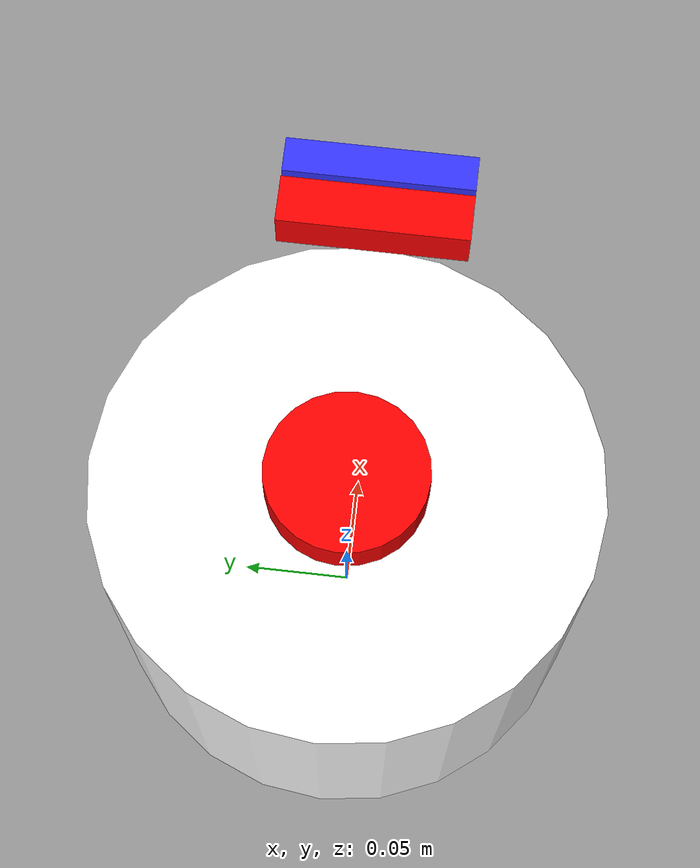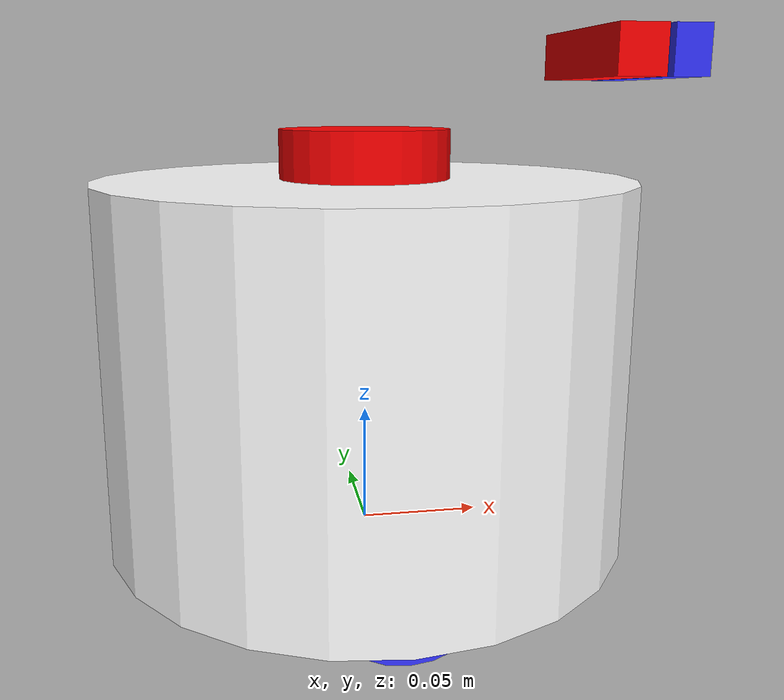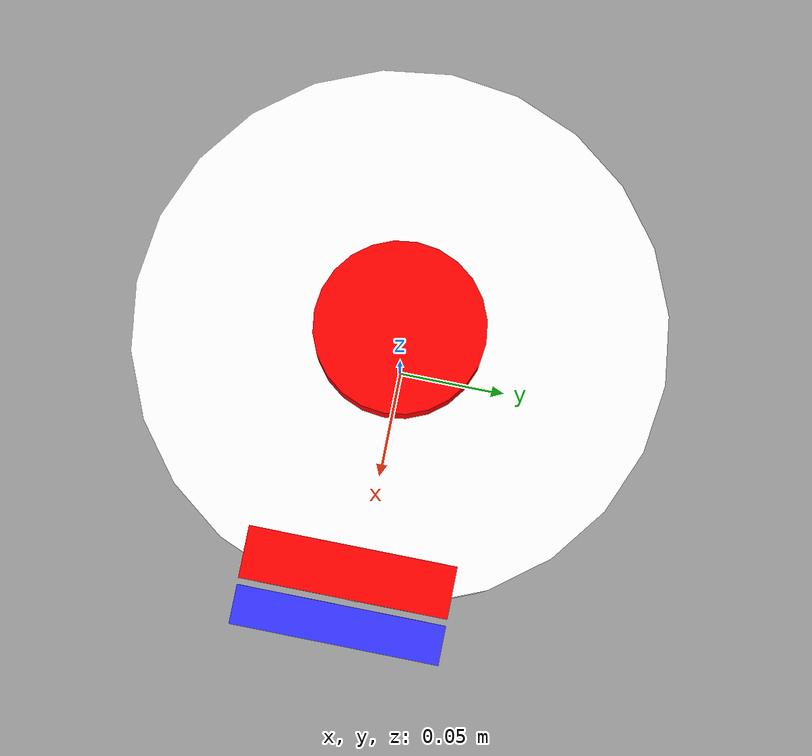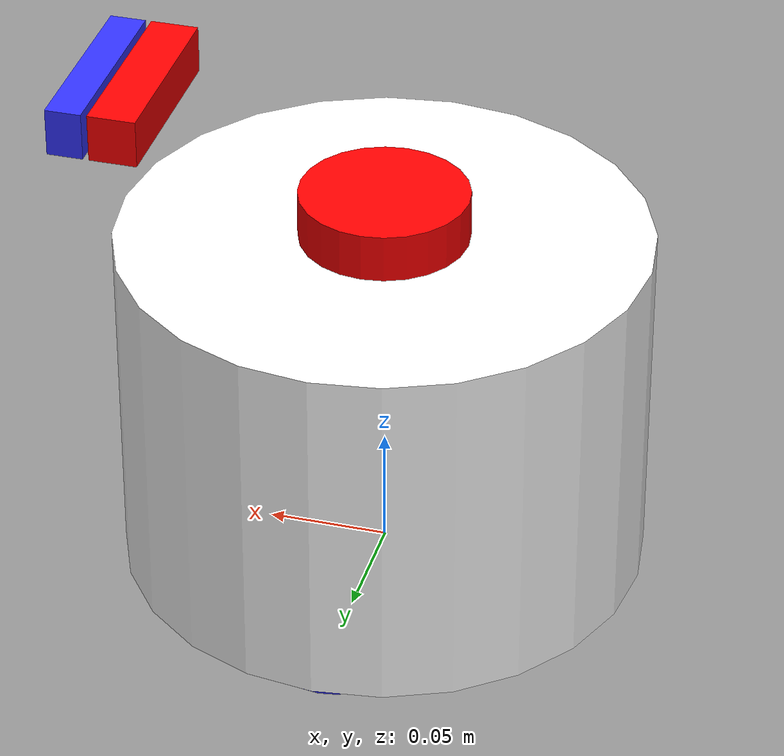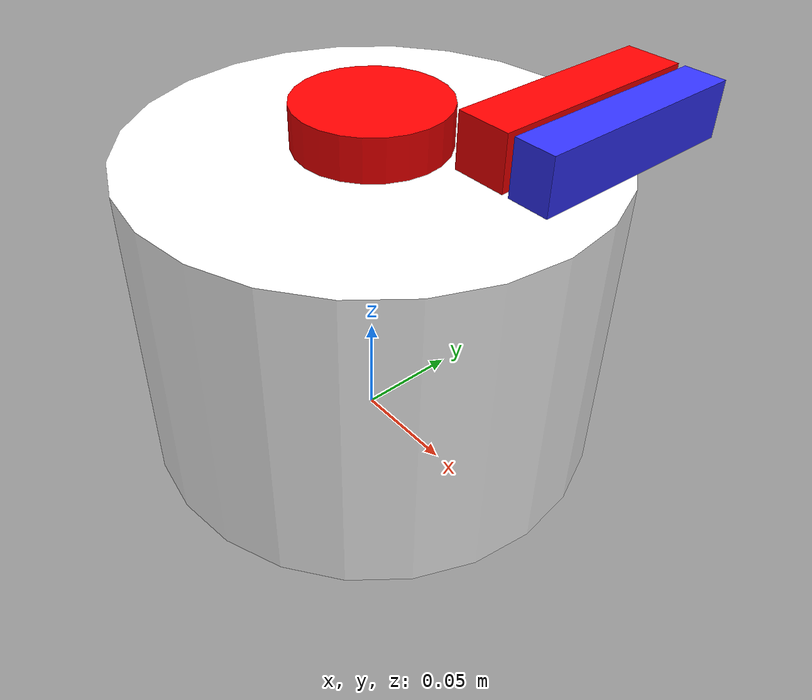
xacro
<?xml version="1.0"?>
<robot xmlns:xacro="http://www.ros.org/wiki/xacro" name="robot">
  <xacro:include filename="$(find robot_model)/description/inertial_macros.xacro"/>
  <xacro:include filename="$(find robot_model)/description/robot_core.xacro"/>
  <xacro:include filename="$(find robot_model)/description/robot_control.xacro"/>
  <xacro:include filename="$(find robot_model)/description/lidar.xacro"/>
  <xacro:include filename="$(find robot_model)/description/camera.xacro"/>
  <xacro:include filename="$(find robot_model)/description/depth_camera.xacro"/>
</robot>

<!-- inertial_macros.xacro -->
<robot xmlns:xacro="http://www.ros.org/wiki/xacro">
    <!-- Specify some standard inertial calculations https://en.wikipedia.org/wiki/List_of_moments_of_inertia -->
    <!-- These make use of xacro's mathematical functionality -->

    <xacro:macro name="inertial_sphere" params="mass radius *origin">
        <inertial>
            <xacro:insert_block name="origin"/>
            <mass value="${mass}" />
            <inertia ixx="${(2/5) * mass * (radius*radius)}" ixy="0.0" ixz="0.0"
                    iyy="${(2/5) * mass * (radius*radius)}" iyz="0.0"
                    izz="${(2/5) * mass * (radius*radius)}" />
        </inertial>
    </xacro:macro>

    <xacro:macro name="inertial_box" params="mass x y z *origin">
        <inertial>
            <xacro:insert_block name="origin"/>
            <mass value="${mass}" />
            <inertia ixx="${(1/12) * mass * (y*y+z*z)}" ixy="0.0" ixz="0.0"
                    iyy="${(1/12) * mass * (x*x+z*z)}" iyz="0.0"
                    izz="${(1/12) * mass * (x*x+y*y)}" />
        </inertial>
    </xacro:macro>

    <xacro:macro name="inertial_cylinder" params="mass length radius *origin">
        <inertial>
            <xacro:insert_block name="origin"/>
            <mass value="${mass}" />
            <inertia ixx="${(1/12) * mass * (3*radius*radius + length*length)}" ixy="0.0" ixz="0.0"
                    iyy="${(1/12) * mass * (3*radius*radius + length*length)}" iyz="0.0"
                    izz="${(1/2) * mass * (radius*radius)}" />
        </inertial>
    </xacro:macro>
</robot>

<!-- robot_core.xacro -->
<robot xmlns:xacro="http://www.ros.org/wiki/xacro" name="robot">
  <xacro:include filename="inertial_macros.xacro"/>

  <material name="white">
    <color rgba="1 1 1 1" />
  </material>

  <material name="orange">
    <color rgba="1 0.3 0.1 1"/>
  </material>

  <material name="blue">
    <color rgba="0.2 0.2 1 1"/>
  </material>

  <material name="black">
    <color rgba="0 0 0 1"/>
  </material>

  <material name="red">
    <color rgba="1 0 0 1"/>
  </material>

  <!-- BASE LINK -->
  <link name="base_link"></link>

  <!-- CHASSIS LINK -->
  <joint name="chassis_joint" type="fixed">
    <parent link="base_link"/>
    <child link="chassis"/>
    <origin xyz="0 0 0"/>
  </joint>

  <link name="chassis">
    <visual>
      <origin xyz="0 0 0.075"/>
      <geometry>
        <cylinder radius="0.11" length="0.15"/>
      </geometry>
      <material name="white"/>
    </visual>
    <collision>
      <origin xyz="0 0 0.075"/>
      <geometry>
        <cylinder radius="0.11" length="0.15"/>
      </geometry>
    </collision>
    <xacro:inertial_cylinder mass="1.3" length="0.15" radius="0.11">
      <origin xyz="0 0 0" rpy="0 0 0"/>
    </xacro:inertial_cylinder>
  </link>

  <!-- LEFT WHEEL LINK -->
  <joint name="left_wheel_joint" type="continuous">
    <parent link="base_link"/>
    <child link="left_wheel"/>
    <origin xyz="0 0.0875 0.0235" rpy="-${pi/2} 0 0" />
    <axis xyz="0 0 1"/>
  </joint>

  <link name="left_wheel">
    <visual>
      <geometry>
        <cylinder radius="0.0325" length="0.025"/>
      </geometry>
      <material name="blue"/>
    </visual>
    <collision>
      <geometry>
        <cylinder radius="0.0325" length="0.025"/>
      </geometry>
    </collision>
    <xacro:inertial_cylinder mass="0.05" length="0.025" radius="0.0325">
      <origin xyz="0 0 0" rpy="0 0 0"/>
    </xacro:inertial_cylinder>
  </link>

  <gazebo reference="left_wheel">
    <mu value="1.0"/>
    <mu2 value="1.0"/>
  </gazebo>

  <disable_collisions link1="left_wheel" link2="chassis"/>

  <!-- RIGHT WHEEL LINK -->
  <joint name="right_wheel_joint" type="continuous">
    <parent link="base_link"/>
    <child link="right_wheel"/>
    <origin xyz="0 -0.0875 0.0235" rpy="${pi/2} 0 0" />
    <axis xyz="0 0 -1"/>
  </joint>

  <link name="right_wheel">
    <visual>
      <geometry>
        <cylinder radius="0.0325" length="0.025"/>
      </geometry>
      <material name="blue"/>
    </visual>
    <collision>
      <geometry>
        <cylinder radius="0.0325" length="0.025"/>
      </geometry>
    </collision>
    <xacro:inertial_cylinder mass="0.05" length="0.025" radius="0.0325">
      <origin xyz="0 0 0" rpy="0 0 0"/>
    </xacro:inertial_cylinder>
  </link>

  <gazebo reference="right_wheel">
    <mu value="1.0"/>
    <mu2 value="1.0"/>
  </gazebo>

  <disable_collisions link1="right_wheel" link2="chassis"/>

  <!-- CASTER WHEEL LINK -->
  <joint name="caster_wheel_joint" type="fixed">
    <parent link="chassis"/>
    <child link="caster_wheel"/>
    <origin xyz="0.08 0 0.001"/>
  </joint>

  <link name="caster_wheel">
    <visual>
      <geometry>
        <sphere radius="0.01"/>
      </geometry>
      <material name="black"/>
    </visual>
    <collision>
      <geometry>
        <sphere radius="0.01"/>
      </geometry>
    </collision>
    <xacro:inertial_sphere mass="0.2" radius="0.01">
      <origin xyz="0 0 0" rpy="0 0 0"/>
    </xacro:inertial_sphere>
  </link>

  <gazebo reference="caster_wheel">
    <mu value="0.001"/>
    <mu2 value="0.001"/>
  </gazebo>
</robot>

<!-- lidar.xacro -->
<robot xmlns:xacro="http://www.ros.org/wiki/xacro">
  <joint name="laser_joint" type="fixed">
    <parent link="chassis"/>
    <child link="laser_frame"/>
    <origin xyz="0.0 0 0.15" rpy="0 0 0"/>
  </joint>

  <link name="laser_frame">
    <visual>
      <geometry>
        <cylinder radius="0.035" length="0.04"/>
      </geometry>
      <material name="red"/>
    </visual>
    <collision>
      <geometry>
        <cylinder radius="0.035" length="0.04"/>
      </geometry>
    </collision>
    <xacro:inertial_cylinder mass="0.125" length="0.04" radius="0.035">
      <origin xyz="0 0 0" rpy="0 0 0"/>
    </xacro:inertial_cylinder>
  </link>

  <gazebo reference="laser_frame">
    <sensor name="laser" type="gpu_lidar">
      <ignition_frame_id>laser_frame</ignition_frame_id>  <!-- THÊM DÒNG NÀY -->
      <topic>scan</topic>
      <update_rate>10</update_rate>
      <lidar>
        <scan>
          <horizontal>
            <samples>360</samples>
            <resolution>1</resolution>
            <min_angle>-3.14159</min_angle>
            <max_angle>3.14159</max_angle>
          </horizontal>
        </scan>
        <range>
          <min>0.12</min>
          <max>10.0</max>
          <resolution>0.015</resolution>
        </range>
        <noise>
          <type>gaussian</type>
          <mean>0.0</mean>
          <stddev>0.01</stddev>
        </noise>
      </lidar>
      <always_on>1</always_on>
      <visualize>true</visualize>
    </sensor>
  </gazebo>

  <!-- IMU -->
  <joint name="imu_joint" type="fixed">
    <parent link="chassis"/>
    <child link="imu_link"/>
    <origin xyz="0 0 0.01" rpy="0 0 0"/>
  </joint>

  <link name="imu_link">
    <visual>
      <geometry>
        <box size="0.02 0.02 0.01"/>
      </geometry>
      <material name="black"/>
    </visual>
    <collision>
      <geometry>
        <box size="0.02 0.02 0.01"/>
      </geometry>
    </collision>
    <xacro:inertial_box mass="0.01" x="0.02" y="0.02" z="0.01">
      <origin xyz="0 0 0" rpy="0 0 0"/>
    </xacro:inertial_box>
  </link>

  <gazebo reference="imu_link">
    <sensor name="imu_sensor" type="imu">
      <ignition_frame_id>imu_link</ignition_frame_id>  <!-- THÊM DÒNG NÀY -->
      <topic>imu</topic>
      <update_rate>100</update_rate>
      <always_on>1</always_on>
      <visualize>true</visualize>
      <imu>
        <angular_velocity>
          <x>
            <noise type="gaussian">
              <mean>0.0</mean>
              <stddev>2e-4</stddev>
              <bias_mean>0.0</bias_mean>
              <bias_stddev>0.0</bias_stddev>
            </noise>
          </x>
          <y>
            <noise type="gaussian">
              <mean>0.0</mean>
              <stddev>2e-4</stddev>
              <bias_mean>0.0</bias_mean>
              <bias_stddev>0.0</bias_stddev>
            </noise>
          </y>
          <z>
            <noise type="gaussian">
              <mean>0.0</mean>
              <stddev>2e-4</stddev>
              <bias_mean>0.0</bias_mean>
              <bias_stddev>0.0</bias_stddev>
            </noise>
          </z>
        </angular_velocity>
        <linear_acceleration>
          <x>
            <noise type="gaussian">
              <mean>0.0</mean>
              <stddev>1.7e-2</stddev>
              <bias_mean>0.0</bias_mean>
              <bias_stddev>0.0</bias_stddev>
            </noise>
          </x>
          <y>
            <noise type="gaussian">
              <mean>0.0</mean>
              <stddev>1.7e-2</stddev>
              <bias_mean>0.0</bias_mean>
              <bias_stddev>0.0</bias_stddev>
            </noise>
          </y>
          <z>
            <noise type="gaussian">
              <mean>0.0</mean>
              <stddev>1.7e-2</stddev>
              <bias_mean>0.0</bias_mean>
              <bias_stddev>0.0</bias_stddev>
            </noise>
          </z>
        </linear_acceleration>
      </imu>
    </sensor>
  </gazebo>
 </robot>

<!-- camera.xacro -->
<robot xmlns:xacro="http://www.ros.org/wiki/xacro">
  <joint name="camera_joint" type="fixed">
    <parent link="chassis"/>
    <child link="camera_link"/>
    <origin xyz="0.1 0 0.2" rpy="0 0 0"/>
  </joint>

  <link name="camera_link">
    <visual>
      <geometry>
        <box size="0.02 0.08 0.02"/>
      </geometry>
      <material name="red"/>
    </visual>
    <collision>
      <geometry>
        <box size="0.02 0.08 0.02"/>
      </geometry>
    </collision>
    <xacro:inertial_box mass="0.1" x="0.02" y="0.08" z="0.02">
      <origin xyz="0 0 0" rpy="0 0 0"/>
    </xacro:inertial_box>
  </link>

  <joint name="camera_optical_joint" type="fixed">
    <parent link="camera_link"/>
    <child link="camera_link_optical"/>
    <origin xyz="0 0 0" rpy="${-pi/2} 0 ${-pi/2}"/>
  </joint>

  <link name="camera_link_optical"/>

  <gazebo reference="camera_link">
    <sensor name="camera" type="camera">
      <ignition_frame_id>camera_link_optical</ignition_frame_id>  <!-- THÊM DÒNG NÀY -->
      <topic>camera</topic>
      <update_rate>30</update_rate>
      <camera>
        <horizontal_fov>1.089</horizontal_fov>
        <image>
          <width>640</width>
          <height>480</height>
          <format>R8G8B8</format>
        </image>
        <clip>
          <near>0.05</near>
          <far>8.0</far>
        </clip>
      </camera>
      <always_on>1</always_on>
      <visualize>true</visualize>
    </sensor>
  </gazebo>
</robot>

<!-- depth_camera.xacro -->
<robot xmlns:xacro="http://www.ros.org/wiki/xacro">
  <joint name="depth_camera_joint" type="fixed">
    <parent link="chassis"/>
    <child link="depth_camera_link"/>
    <origin xyz="0.12 0 0.2" rpy="0 0 0"/>
  </joint>

  <link name="depth_camera_link">
    <visual>
      <geometry>
        <box size="0.015 0.08 0.02"/>
      </geometry>
      <material name="blue"/>
    </visual>
    <collision>
      <geometry>
        <box size="0.015 0.08 0.02"/>
      </geometry>
    </collision>
    <xacro:inertial_box mass="0.1" x="0.015" y="0.08" z="0.02">
      <origin xyz="0 0 0" rpy="0 0 0"/>
    </xacro:inertial_box>
  </link>

  <joint name="depth_camera_optical_joint" type="fixed">
    <parent link="depth_camera_link"/>
    <child link="depth_camera_link_optical"/>
    <origin xyz="0 0 0" rpy="${-pi/2} 0 ${-pi/2}"/>
  </joint>

  <link name="depth_camera_link_optical"/>

  <gazebo reference="depth_camera_link">
    <sensor name="depth_camera" type="depth_camera">
      <ignition_frame_id>depth_camera_link_optical</ignition_frame_id>  <!-- THÊM DÒNG NÀY -->
      <topic>depth_camera</topic>
      <update_rate>30</update_rate>
      <camera>
        <horizontal_fov>1.047</horizontal_fov>
        <image>
          <width>640</width>
          <height>480</height>
          <format>R_FLOAT32</format>
        </image>
        <clip>
          <near>0.1</near>
          <far>10.0</far>
        </clip>
      </camera>
      <always_on>1</always_on>
      <visualize>true</visualize>
    </sensor>
  </gazebo>
</robot>
